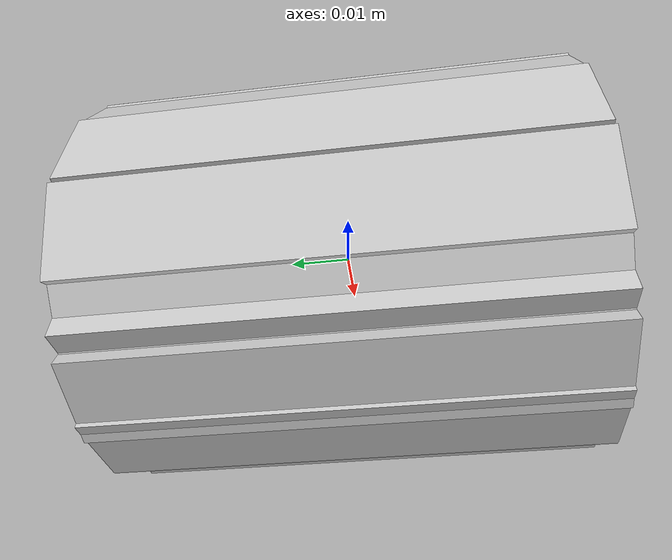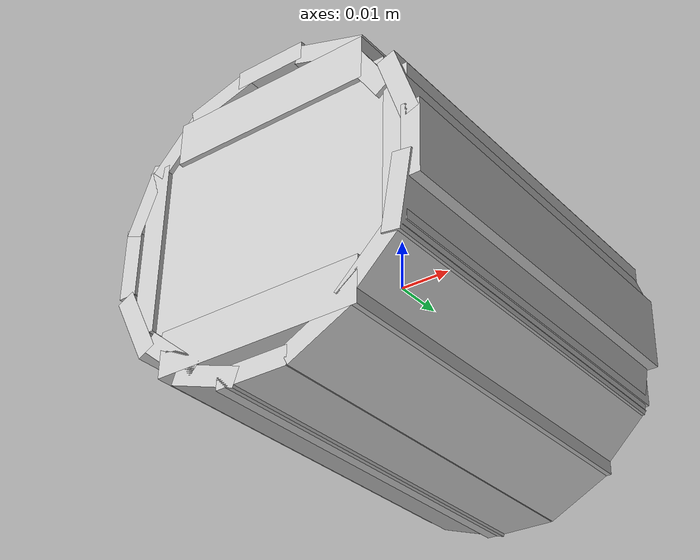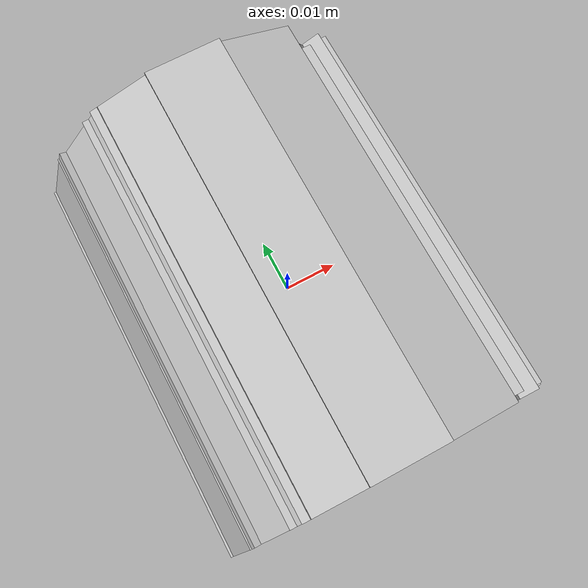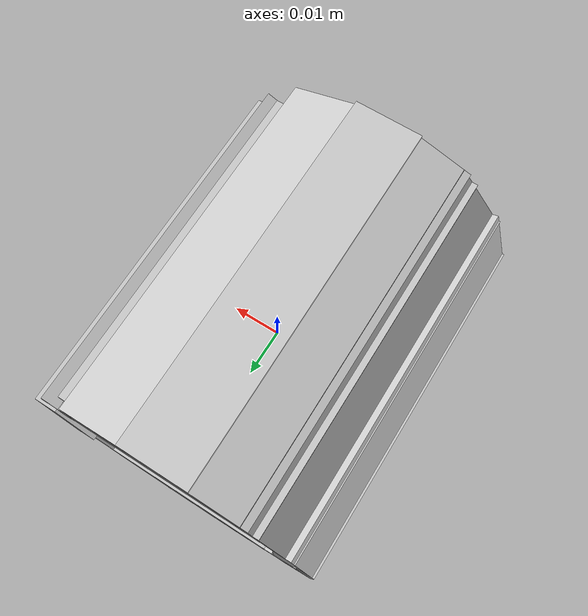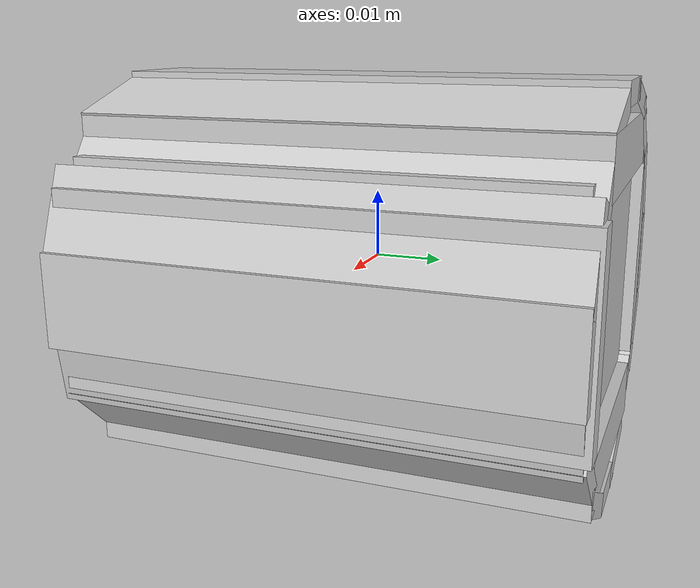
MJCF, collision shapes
<mujoco model="textured">
  <asset>
    <mesh file="visual/textured_vis.msh" name="textured_vis" scale="0.01 0.01 0.01" />
    <texture file="texture_map1.png" name="tex-noise" type="2d" />
    <!-- 新建一个使用该贴图的材质 -->
    <material
      name="noisy"
      reflectance="0.5"
      texrepeat="1 1"
      texture="tex-noise"
      texuniform="false"
    />
    <!-- 原来的黑色或其它材质可保留，视需要而定 -->
    <material name="black" rgba="0 0 0 1" />
    <material name="white" rgba="1 1 1 1"/>
  </asset>
  <worldbody>
    <body>
      <body name="object">

        <geom solimp="0.998 0.998 0.001" solref="0.001 1" density="100" friction="0.95 0.3 0.1"
          type="mesh" mesh="textured_vis" conaffinity="0" contype="0" group="1" material="noisy" />
        <geom solimp="0.998 0.998 0.001" solref="0.001 1" density="100" friction="0.95 0.3 0.1"
          type="box" pos="0.00000 -0.00104 -0.00235" quat="0.50000 -0.50000 0.50000 0.50000"
          size="0.01874 0.02352 0.03625" group="0" rgba="0.8 0.8 0.8 0.3" />
        <geom solimp="0.998 0.998 0.001" solref="0.001 1" density="100" friction="0.95 0.3 0.1"
          type="box" pos="0.02599 -0.00000 -0.00209" quat="0.70711 0.70711 0.00000 -0.00000"
          size="0.00226 0.01471 0.03760" group="0" rgba="0.8 0.8 0.8 0.3" />
        <geom solimp="0.998 0.998 0.001" solref="0.001 1" density="100" friction="0.95 0.3 0.1"
          type="box" pos="-0.02470 -0.00060 -0.00209" quat="0.70711 0.70711 0.00000 -0.00000"
          size="0.00226 0.01662 0.03760" group="0" rgba="0.8 0.8 0.8 0.3" />
        <geom solimp="0.998 0.998 0.001" solref="0.001 1" density="100" friction="0.95 0.3 0.1"
          type="box" pos="-0.00012 -0.00060 -0.02413" quat="0.50000 -0.50000 0.50000 0.50000"
          size="0.00421 0.01985 0.03760" group="0" rgba="0.8 0.8 0.8 0.3" />
        <geom solimp="0.998 0.998 0.001" solref="0.001 1" density="100" friction="0.95 0.3 0.1"
          type="box" pos="-0.00012 -0.00060 0.01776" quat="0.50000 -0.50000 0.50000 0.50000"
          size="0.00421 0.01985 0.03760" group="0" rgba="0.8 0.8 0.8 0.3" />
        <geom solimp="0.998 0.998 0.001" solref="0.001 1" density="100" friction="0.95 0.3 0.1"
          type="box" pos="-0.00012 -0.00060 -0.03260" quat="0.50000 0.50000 0.50000 -0.50000"
          size="0.00177 0.00694 0.03760" group="0" rgba="0.8 0.8 0.8 0.3" />
        <geom solimp="0.998 0.998 0.001" solref="0.001 1" density="100" friction="0.95 0.3 0.1"
          type="box" pos="-0.00012 -0.00060 0.02575" quat="0.50000 0.50000 0.50000 -0.50000"
          size="0.00177 0.00694 0.03760" group="0" rgba="0.8 0.8 0.8 0.3" />
        <geom solimp="0.998 0.998 0.001" solref="0.001 1" density="100" friction="0.95 0.3 0.1"
          type="box" pos="-0.02944 -0.00060 -0.00291" quat="0.00030 0.00030 -0.70711 0.70711"
          size="0.00177 0.00694 0.03760" group="0" rgba="0.8 0.8 0.8 0.3" />
        <geom solimp="0.998 0.998 0.001" solref="0.001 1" density="100" friction="0.95 0.3 0.1"
          type="box" pos="0.02931 -0.00060 -0.00291" quat="0.70711 0.70711 0.00030 -0.00030"
          size="0.00177 0.00694 0.03760" group="0" rgba="0.8 0.8 0.8 0.3" />
        <geom solimp="0.998 0.998 0.001" solref="0.001 1" density="100" friction="0.95 0.3 0.1"
          type="box" pos="0.02689 -0.00060 0.00853" quat="0.69661 0.69661 -0.12141 0.12141"
          size="0.00177 0.00694 0.03760" group="0" rgba="0.8 0.8 0.8 0.3" />
        <geom solimp="0.998 0.998 0.001" solref="0.001 1" density="100" friction="0.95 0.3 0.1"
          type="box" pos="-0.02654 -0.00060 -0.01619" quat="0.16993 -0.16993 0.68638 0.68638"
          size="0.00177 0.00694 0.03760" group="0" rgba="0.8 0.8 0.8 0.3" />
        <geom solimp="0.998 0.998 0.001" solref="0.001 1" density="100" friction="0.95 0.3 0.1"
          type="box" pos="-0.01763 -0.00060 -0.02495" quat="0.30330 -0.30330 0.63875 0.63875"
          size="0.00177 0.00694 0.03760" group="0" rgba="0.8 0.8 0.8 0.3" />
        <geom solimp="0.998 0.998 0.001" solref="0.001 1" density="100" friction="0.95 0.3 0.1"
          type="box" pos="-0.00964 -0.00060 -0.03099" quat="0.41278 -0.41278 0.57412 0.57412"
          size="0.00177 0.00694 0.03760" group="0" rgba="0.8 0.8 0.8 0.3" />
        <geom solimp="0.998 0.998 0.001" solref="0.001 1" density="100" friction="0.95 0.3 0.1"
          type="box" pos="0.01270 -0.00060 0.02274" quat="0.41278 -0.41278 0.57412 0.57412"
          size="0.00177 0.00694 0.03760" group="0" rgba="0.8 0.8 0.8 0.3" />
        <geom solimp="0.998 0.998 0.001" solref="0.001 1" density="100" friction="0.95 0.3 0.1"
          type="box" pos="0.01240 -0.00060 -0.02961" quat="0.36902 0.36902 -0.60318 0.60318"
          size="0.00177 0.00694 0.03760" group="0" rgba="0.8 0.8 0.8 0.3" />
        <geom solimp="0.998 0.998 0.001" solref="0.001 1" density="100" friction="0.95 0.3 0.1"
          type="box" pos="0.02167 -0.00060 -0.02144" quat="0.65137 0.65137 0.27516 -0.27516"
          size="0.00177 0.00694 0.03760" group="0" rgba="0.8 0.8 0.8 0.3" />
        <geom solimp="0.998 0.998 0.001" solref="0.001 1" density="100" friction="0.95 0.3 0.1"
          type="box" pos="0.02696 -0.00099 -0.01169" quat="0.05205 0.05205 -0.70519 0.70519"
          size="0.00177 0.00694 0.03760" group="0" rgba="0.8 0.8 0.8 0.3" />
        <geom solimp="0.998 0.998 0.001" solref="0.001 1" density="100" friction="0.95 0.3 0.1"
          type="box" pos="-0.02700 -0.00060 0.00886" quat="0.13049 0.13049 -0.69496 0.69496"
          size="0.00177 0.00694 0.03760" group="0" rgba="0.8 0.8 0.8 0.3" />
        <geom solimp="0.998 0.998 0.001" solref="0.001 1" density="100" friction="0.95 0.3 0.1"
          type="box" pos="-0.02005 -0.00060 0.01808" quat="0.65572 0.65572 0.26463 -0.26463"
          size="0.00177 0.00694 0.03760" group="0" rgba="0.8 0.8 0.8 0.3" />
        <geom solimp="0.998 0.998 0.001" solref="0.001 1" density="100" friction="0.95 0.3 0.1"
          type="box" pos="0.02026 -0.00060 0.01494" quat="0.20946 -0.20946 0.67537 0.67537"
          size="0.00177 0.00694 0.03760" group="0" rgba="0.8 0.8 0.8 0.3" />
        <geom solimp="0.998 0.998 0.001" solref="0.001 1" density="100" friction="0.95 0.3 0.1"
          type="box" pos="-0.01084 -0.00060 0.02397" quat="0.56204 -0.56204 0.42908 0.42908"
          size="0.00177 0.00694 0.03760" group="0" rgba="0.8 0.8 0.8 0.3" />
      </body>
      <site rgba="0 0 0 0" size="0.005" pos="0 0 -0.06" name="bottom_site" />
      <site rgba="0 0 0 0" size="0.005" pos="0 0 0.04" name="top_site" />
      <site rgba="0 0 0 0" size="0.005" pos="0.025 0.025 0" name="horizontal_radius_site" />

    </body>
  </worldbody>
</mujoco>
